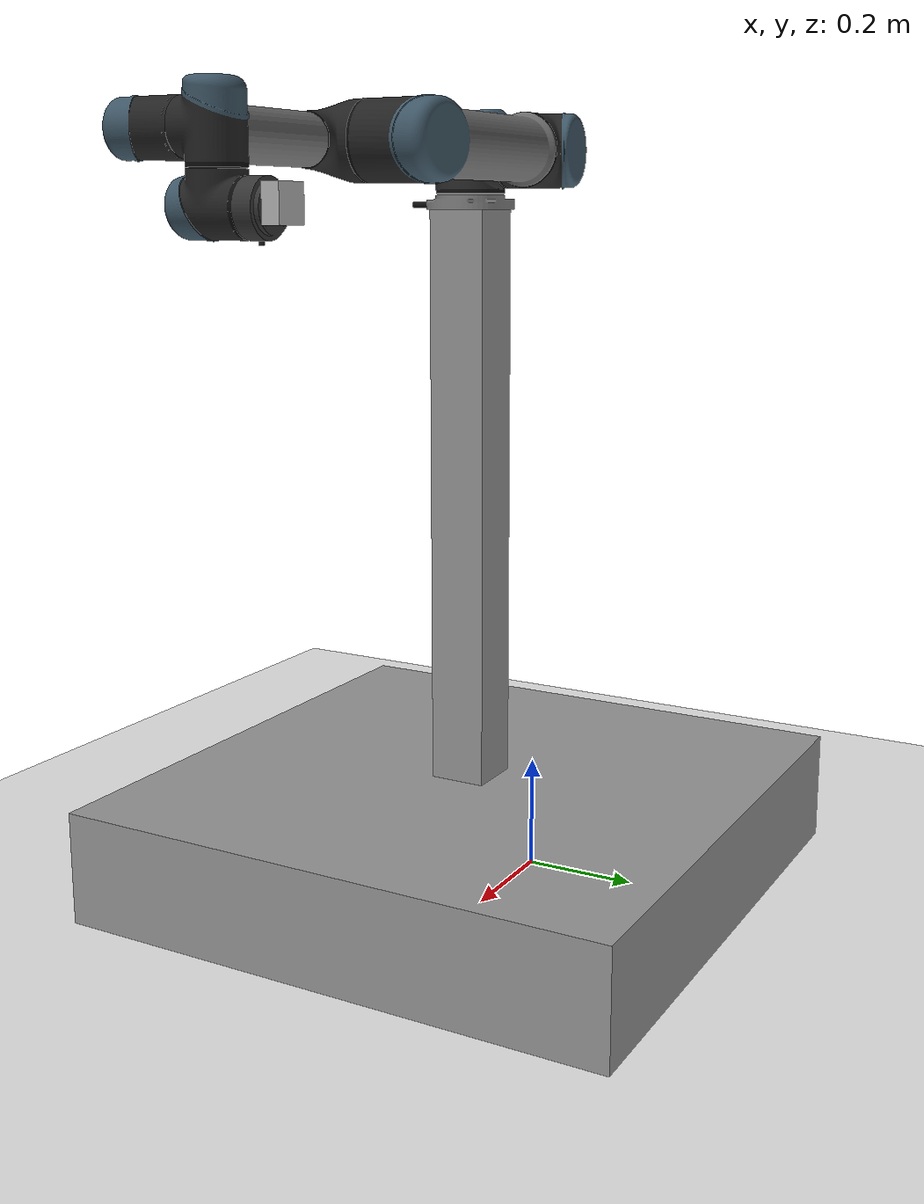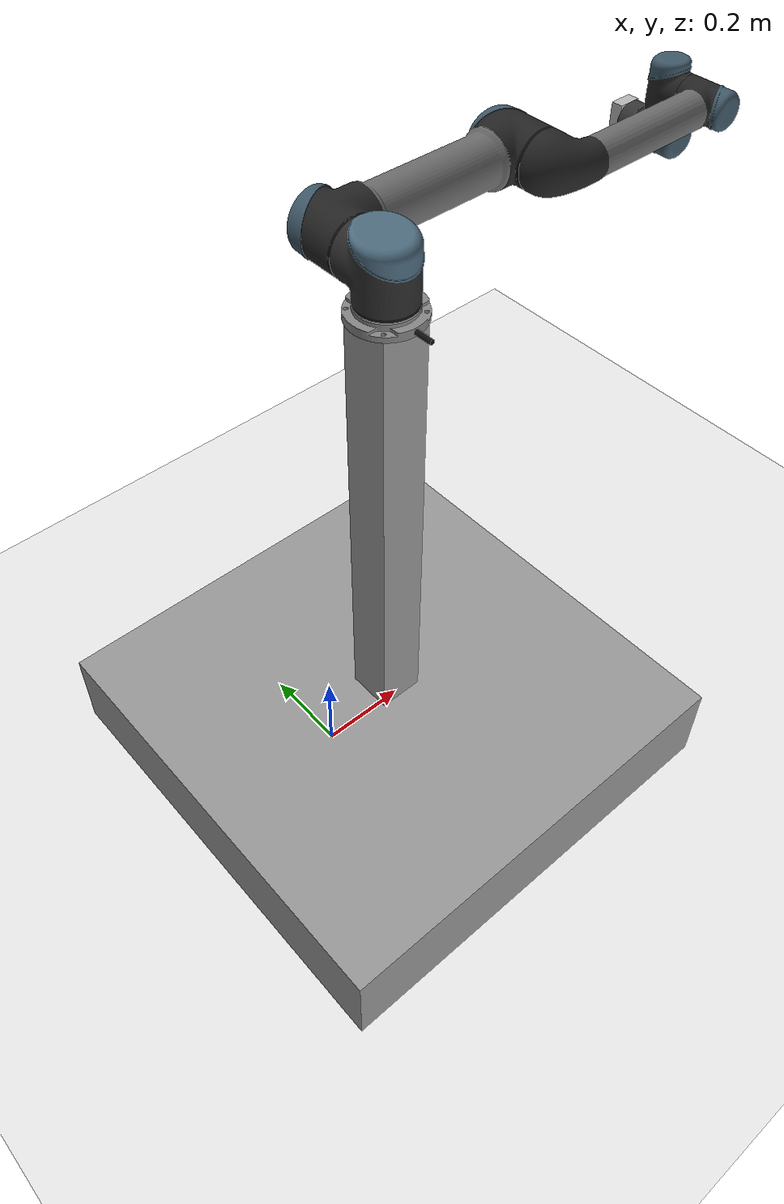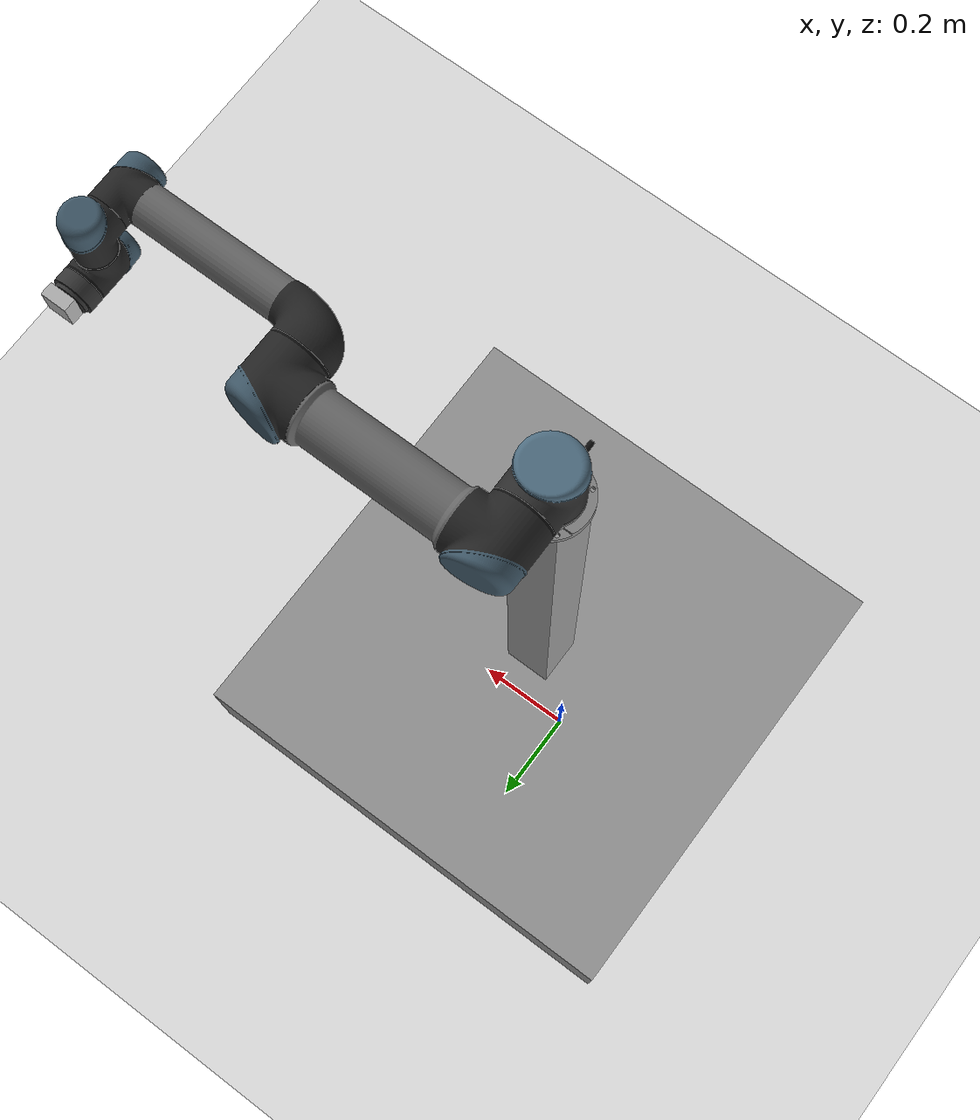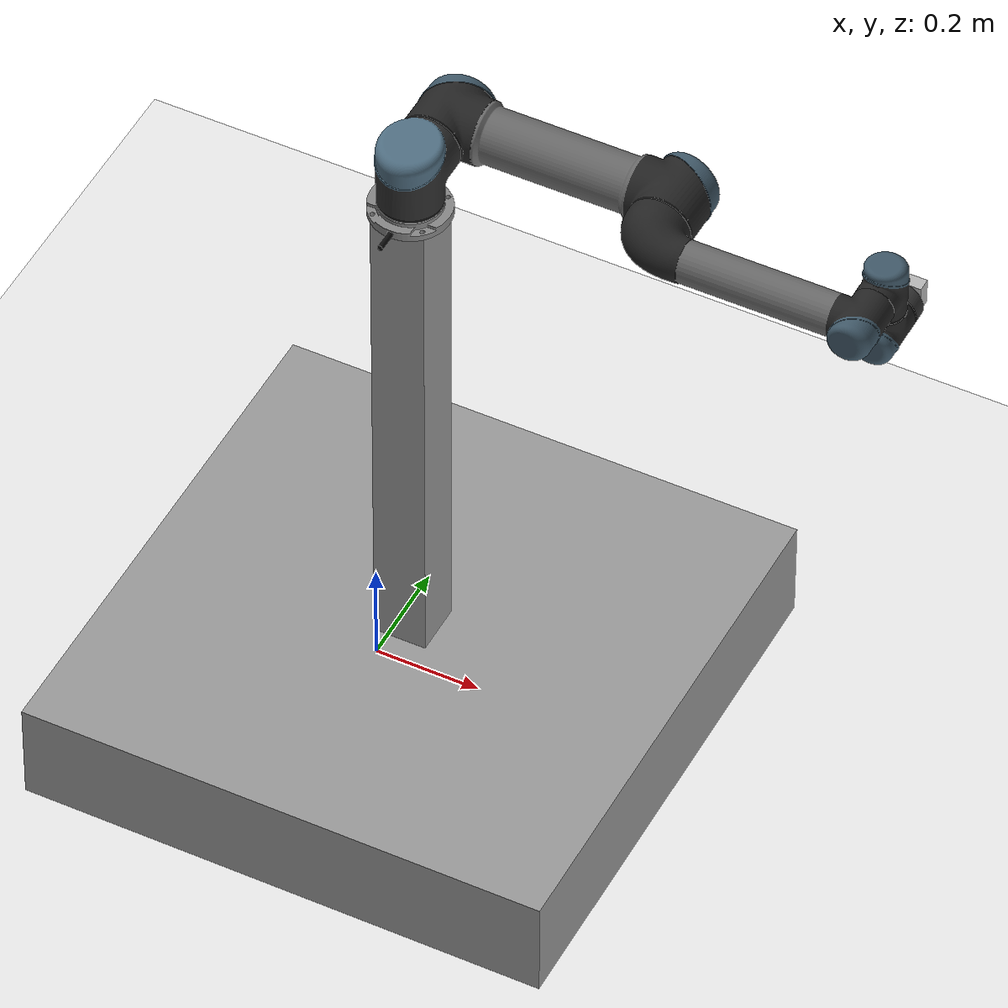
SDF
<sdf version="1.6">
 <world name="default">
  <scene><shadows>0</shadows><background>1.0 1.0 1.0 1.0</background></scene>
  <light name="sun" type="directional">
   <pose>0 0 10 0 -0 0</pose>
   <diffuse>0.8 0.8 0.8 1</diffuse>
   <specular>0.1 0.1 0.1 1</specular>
   <attenuation>
    <range>1000</range>
    <constant>0.9</constant>
    <linear>0.01</linear>
    <quadratic>0.001</quadratic>
   </attenuation>
   <direction>-0.5 0.5 -1</direction>
  </light>
  <model name="ground_plane">
   <static>1</static>
   <link name="link">
    <collision name="collision">
     <geometry><plane><normal>0 0 1</normal><size>100 100</size></plane></geometry>
     <surface><friction><ode><mu>100</mu><mu2>50</mu2></ode></friction></surface>
    </collision>
    <visual name="visual">
     <cast_shadows>0</cast_shadows>
     <geometry><plane><normal>0 0 1</normal><size>100 100</size></plane></geometry>
     <material>
      <script><uri>file://media/materials/scripts/gazebo.material</uri><name>Gazebo/White</name></script>
     </material>
    </visual>
   </link>
   <link name="object_box_link">
    <pose>0.35 0.7 1.35 0 -0 0</pose>
    <inertial>
     <mass>1</mass>
     <inertia>
      <ixx>0.166667</ixx>
      <ixy>0</ixy>
      <ixz>0</ixz>
      <iyy>0.166667</iyy>
      <iyz>0</iyz>
      <izz>0.166667</izz>
     </inertia>
    </inertial>
    <visual name="visual">
     <geometry><sphere><radius>0.05</radius></sphere></geometry>
     <material>
      <script><name>Gazebo/Blue</name><uri>file://media/materials/scripts/gazebo.material</uri></script>
     </material>
    </visual>
   </link>
  </model>
  <gravity>0 0 -9.8</gravity>
  <magnetic_field>6e-06 2.3e-05 -4.2e-05</magnetic_field>
  <atmosphere type="adiabatic"/>
  <physics name="default_physics" default="0" type="ode">
   <max_step_size>0.001</max_step_size>
   <real_time_factor>1</real_time_factor>
   <real_time_update_rate>1000</real_time_update_rate>
  </physics>
  <scene><ambient>0.4 0.4 0.4 1</ambient><background>0.7 0.7 0.7 1</background><shadows>1</shadows></scene>
  <spherical_coordinates>
   <surface_model>EARTH_WGS84</surface_model>
   <latitude_deg>0</latitude_deg>
   <longitude_deg>0</longitude_deg>
   <elevation>0</elevation>
   <heading_deg>0</heading_deg>
  </spherical_coordinates>
  <model name="robot_model">
   <plugin name="velocity_controller_ros" filename="libvelocity_controller_ros.so"/>
   <link name="base_stand::ground_base_link">
    <pose>0 0 0.1 0 -0 0</pose>
    <inertial>
     <mass>1000</mass>
     <inertia>
      <ixx>0.166667</ixx>
      <ixy>0</ixy>
      <ixz>0</ixz>
      <iyy>0.166667</iyy>
      <iyz>0</iyz>
      <izz>0.166667</izz>
     </inertia>
    </inertial>
    <visual name="ground_base_visual">
     <geometry><box><size>1 1 0.2</size></box></geometry>
     <material>
      <script><name>Gazebo/Grey</name><uri>file://media/materials/scripts/gazebo.material</uri></script>
      <ambient>0.3 0.3 0.3 1</ambient>
      <diffuse>0.7 0.7 0.7 1</diffuse>
      <specular>0.01 0.01 0.01 1</specular>
      <emissive>0 0 0 1</emissive>
     </material>
    </visual>
    <collision name="ground_base_collision">
     <geometry><box><size>1 1 0.2</size></box></geometry>
     <surface>
      <friction>
       <ode><mu>1</mu><mu2>1</mu2><fdir1>0 0 0</fdir1><slip1>0</slip1><slip2>0</slip2></ode>
       <torsional>
        <coefficient>1</coefficient>
        <patch_radius>0</patch_radius>
        <surface_radius>0</surface_radius>
        <use_patch_radius>1</use_patch_radius>
        <ode><slip>0</slip></ode>
       </torsional>
      </friction>
      <bounce><restitution_coefficient>0</restitution_coefficient><threshold>1e+06</threshold></bounce>
      <contact>
       <collide_without_contact>0</collide_without_contact>
       <collide_without_contact_bitmask>1</collide_without_contact_bitmask>
       <collide_bitmask>1</collide_bitmask>
       <ode>
        <soft_cfm>0</soft_cfm>
        <soft_erp>0.2</soft_erp>
        <kp>1e+13</kp>
        <kd>1</kd>
        <max_vel>0.01</max_vel>
        <min_depth>0</min_depth>
       </ode>
       <bullet>
        <split_impulse>1</split_impulse>
        <split_impulse_penetration_threshold>-0.01</split_impulse_penetration_threshold>
        <soft_cfm>0</soft_cfm>
        <soft_erp>0.2</soft_erp>
        <kp>1e+13</kp>
        <kd>1</kd>
       </bullet>
      </contact>
     </surface>
    </collision>
   </link>
   <link name="base_stand::upper_base_link">
    <pose>0 0 0.7 0 -0 0</pose>
    <inertial>
     <mass>100</mass>
     <inertia>
      <ixx>0.166667</ixx>
      <ixy>0</ixy>
      <ixz>0</ixz>
      <iyy>0.166667</iyy>
      <iyz>0</iyz>
      <izz>0.166667</izz>
     </inertia>
    </inertial>
    <visual name="upper_base_visual">
     <geometry><box><size>0.1 0.1 1</size></box></geometry>
     <material>
      <script><name>Gazebo/Grey</name><uri>file://media/materials/scripts/gazebo.material</uri></script>
      <ambient>0.3 0.3 0.3 1</ambient>
      <diffuse>0.7 0.7 0.7 1</diffuse>
      <specular>0.01 0.01 0.01 1</specular>
      <emissive>0 0 0 1</emissive>
     </material>
    </visual>
    <collision name="upper_base_collision">
     <geometry><box><size>0.1 0.1 1</size></box></geometry>
     <surface>
      <friction>
       <ode><mu>1</mu><mu2>1</mu2><fdir1>0 0 0</fdir1><slip1>0</slip1><slip2>0</slip2></ode>
       <torsional>
        <coefficient>1</coefficient>
        <patch_radius>0</patch_radius>
        <surface_radius>0</surface_radius>
        <use_patch_radius>1</use_patch_radius>
        <ode><slip>0</slip></ode>
       </torsional>
      </friction>
      <bounce><restitution_coefficient>0</restitution_coefficient><threshold>1e+06</threshold></bounce>
      <contact>
       <collide_without_contact>0</collide_without_contact>
       <collide_without_contact_bitmask>1</collide_without_contact_bitmask>
       <collide_bitmask>1</collide_bitmask>
       <ode>
        <soft_cfm>0</soft_cfm>
        <soft_erp>0.2</soft_erp>
        <kp>1e+13</kp>
        <kd>1</kd>
        <max_vel>0.01</max_vel>
        <min_depth>0</min_depth>
       </ode>
       <bullet>
        <split_impulse>1</split_impulse>
        <split_impulse_penetration_threshold>-0.01</split_impulse_penetration_threshold>
        <soft_cfm>0</soft_cfm>
        <soft_erp>0.2</soft_erp>
        <kp>1e+13</kp>
        <kd>1</kd>
       </bullet>
      </contact>
     </surface>
    </collision>
   </link>
   <joint name="base_stand::base_joint" type="fixed">
    <child>base_stand::upper_base_link</child>
    <parent>base_stand::ground_base_link</parent>
   </joint>
   <static>0</static>
   <link name="ur5::base_link">
    <pose>0 0 1.2 0 -0 0</pose>
    <inertial>
     <mass>4</mass>
     <inertia>
      <ixx>0.00443333</ixx>
      <ixy>0</ixy>
      <ixz>0</ixz>
      <iyy>0.00443333</iyy>
      <iyz>0</iyz>
      <izz>0.0072</izz>
     </inertia>
    </inertial>
    <visual name="base_link_visual">
     <geometry>
      <mesh>
       <scale>1 1 1</scale>
       <uri>/home/mithun/ur_vs_gazebo/src/universal_robot/ur_description/meshes/ur5/visual/base.dae</uri>
      </mesh>
     </geometry>
    </visual>
    <collision name="base_link_collision">
     <geometry>
      <mesh>
       <uri>/home/mithun/ur_vs_gazebo/src/universal_robot/ur_description/meshes/ur5/collision/base.stl</uri>
       <scale>1 1 1</scale>
      </mesh>
     </geometry>
     <surface>
      <friction>
       <ode><mu>1</mu><mu2>1</mu2><fdir1>0 0 0</fdir1><slip1>0</slip1><slip2>0</slip2></ode>
       <torsional>
        <coefficient>1</coefficient>
        <patch_radius>0</patch_radius>
        <surface_radius>0</surface_radius>
        <use_patch_radius>1</use_patch_radius>
        <ode><slip>0</slip></ode>
       </torsional>
      </friction>
      <bounce><restitution_coefficient>0</restitution_coefficient><threshold>1e+06</threshold></bounce>
      <contact>
       <collide_without_contact>0</collide_without_contact>
       <collide_without_contact_bitmask>1</collide_without_contact_bitmask>
       <collide_bitmask>1</collide_bitmask>
       <ode>
        <soft_cfm>0</soft_cfm>
        <soft_erp>0.2</soft_erp>
        <kp>1e+13</kp>
        <kd>1</kd>
        <max_vel>0.01</max_vel>
        <min_depth>0</min_depth>
       </ode>
       <bullet>
        <split_impulse>1</split_impulse>
        <split_impulse_penetration_threshold>-0.01</split_impulse_penetration_threshold>
        <soft_cfm>0</soft_cfm>
        <soft_erp>0.2</soft_erp>
        <kp>1e+13</kp>
        <kd>1</kd>
       </bullet>
      </contact>
     </surface>
    </collision>
   </link>
   <link name="ur5::forearm_link">
    <pose>0.425 0.01615 1.28916 3.14159 1.57079 3.14159</pose>
    <inertial>
     <pose>0 0 0.25 0 -0 0</pose>
     <mass>2.275</mass>
     <inertia>
      <ixx>0.0494433</ixx>
      <ixy>0</ixy>
      <ixz>0</ixz>
      <iyy>0.0494433</iyy>
      <iyz>0</iyz>
      <izz>0.004095</izz>
     </inertia>
    </inertial>
    <visual name="forearm_link_visual">
     <geometry>
      <mesh>
       <scale>1 1 1</scale>
       <uri>/home/mithun/ur_vs_gazebo/src/universal_robot/ur_description/meshes/ur5/visual/forearm.dae</uri>
      </mesh>
     </geometry>
    </visual>
    <collision name="forearm_link_collision">
     <geometry>
      <mesh>
       <uri>/home/mithun/ur_vs_gazebo/src/universal_robot/ur_description/meshes/ur5/collision/forearm.stl</uri>
       <scale>1 1 1</scale>
      </mesh>
     </geometry>
     <surface>
      <friction>
       <ode><mu>1</mu><mu2>1</mu2><fdir1>0 0 0</fdir1><slip1>0</slip1><slip2>0</slip2></ode>
       <torsional>
        <coefficient>1</coefficient>
        <patch_radius>0</patch_radius>
        <surface_radius>0</surface_radius>
        <use_patch_radius>1</use_patch_radius>
        <ode><slip>0</slip></ode>
       </torsional>
      </friction>
      <bounce><restitution_coefficient>0</restitution_coefficient><threshold>1e+06</threshold></bounce>
      <contact>
       <collide_without_contact>0</collide_without_contact>
       <collide_without_contact_bitmask>1</collide_without_contact_bitmask>
       <collide_bitmask>1</collide_bitmask>
       <ode>
        <soft_cfm>0</soft_cfm>
        <soft_erp>0.2</soft_erp>
        <kp>1e+13</kp>
        <kd>1</kd>
        <max_vel>0.01</max_vel>
        <min_depth>0</min_depth>
       </ode>
       <bullet>
        <split_impulse>1</split_impulse>
        <split_impulse_penetration_threshold>-0.01</split_impulse_penetration_threshold>
        <soft_cfm>0</soft_cfm>
        <soft_erp>0.2</soft_erp>
        <kp>1e+13</kp>
        <kd>1</kd>
       </bullet>
      </contact>
     </surface>
    </collision>
   </link>
   <link name="ur5::shoulder_link">
    <pose>0 0 1.28916 0 -0 0</pose>
    <inertial>
     <mass>3.7</mass>
     <inertia>
      <ixx>0.0102675</ixx>
      <ixy>0</ixy>
      <ixz>0</ixz>
      <iyy>0.0102675</iyy>
      <iyz>0</iyz>
      <izz>0.00666</izz>
     </inertia>
    </inertial>
    <visual name="shoulder_link_visual">
     <geometry>
      <mesh>
       <scale>1 1 1</scale>
       <uri>/home/mithun/ur_vs_gazebo/src/universal_robot/ur_description/meshes/ur5/visual/shoulder.dae</uri>
      </mesh>
     </geometry>
    </visual>
    <collision name="shoulder_link_collision">
     <geometry>
      <mesh>
       <uri>/home/mithun/ur_vs_gazebo/src/universal_robot/ur_description/meshes/ur5/collision/shoulder.stl</uri>
       <scale>1 1 1</scale>
      </mesh>
     </geometry>
     <surface>
      <friction>
       <ode><mu>1</mu><mu2>1</mu2><fdir1>0 0 0</fdir1><slip1>0</slip1><slip2>0</slip2></ode>
       <torsional>
        <coefficient>1</coefficient>
        <patch_radius>0</patch_radius>
        <surface_radius>0</surface_radius>
        <use_patch_radius>1</use_patch_radius>
        <ode><slip>0</slip></ode>
       </torsional>
      </friction>
      <bounce><restitution_coefficient>0</restitution_coefficient><threshold>1e+06</threshold></bounce>
      <contact>
       <collide_without_contact>0</collide_without_contact>
       <collide_without_contact_bitmask>1</collide_without_contact_bitmask>
       <collide_bitmask>1</collide_bitmask>
       <ode>
        <soft_cfm>0</soft_cfm>
        <soft_erp>0.2</soft_erp>
        <kp>1e+13</kp>
        <kd>1</kd>
        <max_vel>0.01</max_vel>
        <min_depth>0</min_depth>
       </ode>
       <bullet>
        <split_impulse>1</split_impulse>
        <split_impulse_penetration_threshold>-0.01</split_impulse_penetration_threshold>
        <soft_cfm>0</soft_cfm>
        <soft_erp>0.2</soft_erp>
        <kp>1e+13</kp>
        <kd>1</kd>
       </bullet>
      </contact>
     </surface>
    </collision>
   </link>
   <link name="ur5::upper_arm_link">
    <pose>0 0.13585 1.28916 3.14159 1.57079 3.14159</pose>
    <inertial>
     <pose>0 0 0.28 0 -0 0</pose>
     <mass>8.393</mass>
     <inertia>
      <ixx>0.226891</ixx>
      <ixy>0</ixy>
      <ixz>0</ixz>
      <iyy>0.226891</iyy>
      <iyz>0</iyz>
      <izz>0.0151074</izz>
     </inertia>
    </inertial>
    <visual name="upper_arm_link_visual">
     <geometry>
      <mesh>
       <scale>1 1 1</scale>
       <uri>/home/mithun/ur_vs_gazebo/src/universal_robot/ur_description/meshes/ur5/visual/upperarm.dae</uri>
      </mesh>
     </geometry>
    </visual>
    <collision name="upper_arm_link_collision">
     <geometry>
      <mesh>
       <uri>/home/mithun/ur_vs_gazebo/src/universal_robot/ur_description/meshes/ur5/collision/upperarm.stl</uri>
       <scale>1 1 1</scale>
      </mesh>
     </geometry>
     <surface>
      <friction>
       <ode><mu>1</mu><mu2>1</mu2><fdir1>0 0 0</fdir1><slip1>0</slip1><slip2>0</slip2></ode>
       <torsional>
        <coefficient>1</coefficient>
        <patch_radius>0</patch_radius>
        <surface_radius>0</surface_radius>
        <use_patch_radius>1</use_patch_radius>
        <ode><slip>0</slip></ode>
       </torsional>
      </friction>
      <bounce><restitution_coefficient>0</restitution_coefficient><threshold>1e+06</threshold></bounce>
      <contact>
       <collide_without_contact>0</collide_without_contact>
       <collide_without_contact_bitmask>1</collide_without_contact_bitmask>
       <collide_bitmask>1</collide_bitmask>
       <ode>
        <soft_cfm>0</soft_cfm>
        <soft_erp>0.2</soft_erp>
        <kp>1e+13</kp>
        <kd>1</kd>
        <max_vel>0.01</max_vel>
        <min_depth>0</min_depth>
       </ode>
       <bullet>
        <split_impulse>1</split_impulse>
        <split_impulse_penetration_threshold>-0.01</split_impulse_penetration_threshold>
        <soft_cfm>0</soft_cfm>
        <soft_erp>0.2</soft_erp>
        <kp>1e+13</kp>
        <kd>1</kd>
       </bullet>
      </contact>
     </surface>
    </collision>
   </link>
   <link name="ur5::wrist_1_link">
    <pose>0.81725 0.01615 1.28916 3.14159 -0 3.14159</pose>
    <inertial>
     <mass>1.219</mass>
     <inertia>
      <ixx>0.111173</ixx>
      <ixy>0</ixy>
      <ixz>0</ixz>
      <iyy>0.111173</iyy>
      <iyz>0</iyz>
      <izz>0.21942</izz>
     </inertia>
    </inertial>
    <visual name="wrist_1_link_visual">
     <geometry>
      <mesh>
       <scale>1 1 1</scale>
       <uri>/home/mithun/ur_vs_gazebo/src/universal_robot/ur_description/meshes/ur5/visual/wrist1.dae</uri>
      </mesh>
     </geometry>
    </visual>
    <collision name="wrist_1_link_collision">
     <geometry>
      <mesh>
       <uri>/home/mithun/ur_vs_gazebo/src/universal_robot/ur_description/meshes/ur5/collision/wrist1.stl</uri>
       <scale>1 1 1</scale>
      </mesh>
     </geometry>
     <surface>
      <friction>
       <ode><mu>1</mu><mu2>1</mu2><fdir1>0 0 0</fdir1><slip1>0</slip1><slip2>0</slip2></ode>
       <torsional>
        <coefficient>1</coefficient>
        <patch_radius>0</patch_radius>
        <surface_radius>0</surface_radius>
        <use_patch_radius>1</use_patch_radius>
        <ode><slip>0</slip></ode>
       </torsional>
      </friction>
      <bounce><restitution_coefficient>0</restitution_coefficient><threshold>1e+06</threshold></bounce>
      <contact>
       <collide_without_contact>0</collide_without_contact>
       <collide_without_contact_bitmask>1</collide_without_contact_bitmask>
       <collide_bitmask>1</collide_bitmask>
       <ode>
        <soft_cfm>0</soft_cfm>
        <soft_erp>0.2</soft_erp>
        <kp>1e+13</kp>
        <kd>1</kd>
        <max_vel>0.01</max_vel>
        <min_depth>0</min_depth>
       </ode>
       <bullet>
        <split_impulse>1</split_impulse>
        <split_impulse_penetration_threshold>-0.01</split_impulse_penetration_threshold>
        <soft_cfm>0</soft_cfm>
        <soft_erp>0.2</soft_erp>
        <kp>1e+13</kp>
        <kd>1</kd>
       </bullet>
      </contact>
     </surface>
    </collision>
   </link>
   <link name="ur5::wrist_2_link">
    <pose>0.81725 0.10915 1.28916 3.14159 -0 3.14159</pose>
    <inertial>
     <mass>1.219</mass>
     <inertia>
      <ixx>0.111173</ixx>
      <ixy>0</ixy>
      <ixz>0</ixz>
      <iyy>0.111173</iyy>
      <iyz>0</iyz>
      <izz>0.21942</izz>
     </inertia>
    </inertial>
    <visual name="wrist_2_link_visual">
     <geometry>
      <mesh>
       <scale>1 1 1</scale>
       <uri>/home/mithun/ur_vs_gazebo/src/universal_robot/ur_description/meshes/ur5/visual/wrist2.dae</uri>
      </mesh>
     </geometry>
    </visual>
    <collision name="wrist_2_link_collision">
     <geometry>
      <mesh>
       <uri>/home/mithun/ur_vs_gazebo/src/universal_robot/ur_description/meshes/ur5/collision/wrist2.stl</uri>
       <scale>1 1 1</scale>
      </mesh>
     </geometry>
     <surface>
      <friction>
       <ode><mu>1</mu><mu2>1</mu2><fdir1>0 0 0</fdir1><slip1>0</slip1><slip2>0</slip2></ode>
       <torsional>
        <coefficient>1</coefficient>
        <patch_radius>0</patch_radius>
        <surface_radius>0</surface_radius>
        <use_patch_radius>1</use_patch_radius>
        <ode><slip>0</slip></ode>
       </torsional>
      </friction>
      <bounce><restitution_coefficient>0</restitution_coefficient><threshold>1e+06</threshold></bounce>
      <contact>
       <collide_without_contact>0</collide_without_contact>
       <collide_without_contact_bitmask>1</collide_without_contact_bitmask>
       <collide_bitmask>1</collide_bitmask>
       <ode>
        <soft_cfm>0</soft_cfm>
        <soft_erp>0.2</soft_erp>
        <kp>1e+13</kp>
        <kd>1</kd>
        <max_vel>0.01</max_vel>
        <min_depth>0</min_depth>
       </ode>
       <bullet>
        <split_impulse>1</split_impulse>
        <split_impulse_penetration_threshold>-0.01</split_impulse_penetration_threshold>
        <soft_cfm>0</soft_cfm>
        <soft_erp>0.2</soft_erp>
        <kp>1e+13</kp>
        <kd>1</kd>
       </bullet>
      </contact>
     </surface>
    </collision>
   </link>
   <link name="ur5::wrist_3_link">
    <pose>0.81725 0.10915 1.19451 3.14159 -0 3.14159</pose>
    <inertial>
     <mass>0.1879</mass>
     <inertia>
      <ixx>0.0171365</ixx>
      <ixy>0</ixy>
      <ixz>0</ixz>
      <iyy>0.0171365</iyy>
      <iyz>0</iyz>
      <izz>0.033822</izz>
     </inertia>
    </inertial>
    <visual name="wrist_3_link_visual">
     <geometry>
      <mesh>
       <scale>1 1 1</scale>
       <uri>/home/mithun/ur_vs_gazebo/src/universal_robot/ur_description/meshes/ur5/visual/wrist3.dae</uri>
      </mesh>
     </geometry>
    </visual>
    <collision name="wrist_3_link_collision">
     <geometry>
      <mesh>
       <uri>/home/mithun/ur_vs_gazebo/src/universal_robot/ur_description/meshes/ur5/collision/wrist3.stl</uri>
       <scale>1 1 1</scale>
      </mesh>
     </geometry>
     <surface>
      <friction>
       <ode><mu>1</mu><mu2>1</mu2><fdir1>0 0 0</fdir1><slip1>0</slip1><slip2>0</slip2></ode>
       <torsional>
        <coefficient>1</coefficient>
        <patch_radius>0</patch_radius>
        <surface_radius>0</surface_radius>
        <use_patch_radius>1</use_patch_radius>
        <ode><slip>0</slip></ode>
       </torsional>
      </friction>
      <bounce><restitution_coefficient>0</restitution_coefficient><threshold>1e+06</threshold></bounce>
      <contact>
       <collide_without_contact>0</collide_without_contact>
       <collide_without_contact_bitmask>1</collide_without_contact_bitmask>
       <collide_bitmask>1</collide_bitmask>
       <ode>
        <soft_cfm>0</soft_cfm>
        <soft_erp>0.2</soft_erp>
        <kp>1e+13</kp>
        <kd>1</kd>
        <max_vel>0.01</max_vel>
        <min_depth>0</min_depth>
       </ode>
       <bullet>
        <split_impulse>1</split_impulse>
        <split_impulse_penetration_threshold>-0.01</split_impulse_penetration_threshold>
        <soft_cfm>0</soft_cfm>
        <soft_erp>0.2</soft_erp>
        <kp>1e+13</kp>
        <kd>1</kd>
       </bullet>
      </contact>
     </surface>
    </collision>
    <collision name="wrist_3_link_fixed_joint_lump__ee_link_collision_1">
     <pose>0 0.0723 0 0 -0 1.5708</pose>
     <geometry><box><size>0.01 0.01 0.01</size></box></geometry>
     <surface>
      <friction>
       <ode><mu>1</mu><mu2>1</mu2><fdir1>0 0 0</fdir1><slip1>0</slip1><slip2>0</slip2></ode>
       <torsional>
        <coefficient>1</coefficient>
        <patch_radius>0</patch_radius>
        <surface_radius>0</surface_radius>
        <use_patch_radius>1</use_patch_radius>
        <ode><slip>0</slip></ode>
       </torsional>
      </friction>
      <bounce><restitution_coefficient>0</restitution_coefficient><threshold>1e+06</threshold></bounce>
      <contact>
       <collide_without_contact>0</collide_without_contact>
       <collide_without_contact_bitmask>1</collide_without_contact_bitmask>
       <collide_bitmask>1</collide_bitmask>
       <ode>
        <soft_cfm>0</soft_cfm>
        <soft_erp>0.2</soft_erp>
        <kp>1e+13</kp>
        <kd>1</kd>
        <max_vel>0.01</max_vel>
        <min_depth>0</min_depth>
       </ode>
       <bullet>
        <split_impulse>1</split_impulse>
        <split_impulse_penetration_threshold>-0.01</split_impulse_penetration_threshold>
        <soft_cfm>0</soft_cfm>
        <soft_erp>0.2</soft_erp>
        <kp>1e+13</kp>
        <kd>1</kd>
       </bullet>
      </contact>
     </surface>
    </collision>
   </link>
   <joint name="ur5::elbow_joint" type="revolute">
    <parent>ur5::upper_arm_link</parent>
    <child>ur5::forearm_link</child>
    <axis>
     <xyz>0 1 0</xyz>
     <use_parent_model_frame>1</use_parent_model_frame>
     <limit><lower>-6.28319</lower><upper>6.28319</upper><effort>150</effort><velocity>3.15</velocity></limit>
     <dynamics>
      <spring_reference>0</spring_reference>
      <spring_stiffness>0</spring_stiffness>
      <damping>0</damping>
      <friction>0</friction>
     </dynamics>
    </axis>
    <physics>
     <ode><limit><cfm>0</cfm><erp>0.2</erp></limit><suspension><cfm>0</cfm><erp>0.2</erp></suspension></ode>
    </physics>
   </joint>
   <joint name="ur5::shoulder_lift_joint" type="revolute">
    <parent>ur5::shoulder_link</parent>
    <child>ur5::upper_arm_link</child>
    <axis>
     <xyz>0 1 0</xyz>
     <use_parent_model_frame>1</use_parent_model_frame>
     <limit><lower>-6.28319</lower><upper>6.28319</upper><effort>150</effort><velocity>3.15</velocity></limit>
     <dynamics>
      <spring_reference>0</spring_reference>
      <spring_stiffness>0</spring_stiffness>
      <damping>0</damping>
      <friction>0</friction>
     </dynamics>
    </axis>
    <physics>
     <ode><limit><cfm>0</cfm><erp>0.2</erp></limit><suspension><cfm>0</cfm><erp>0.2</erp></suspension></ode>
    </physics>
   </joint>
   <joint name="ur5::shoulder_pan_joint" type="revolute">
    <parent>ur5::base_link</parent>
    <child>ur5::shoulder_link</child>
    <axis>
     <xyz>0 0 1</xyz>
     <use_parent_model_frame>1</use_parent_model_frame>
     <limit><lower>-6.28319</lower><upper>6.28319</upper><effort>150</effort><velocity>3.15</velocity></limit>
     <dynamics>
      <spring_reference>0</spring_reference>
      <spring_stiffness>0</spring_stiffness>
      <damping>0</damping>
      <friction>0</friction>
     </dynamics>
    </axis>
    <physics>
     <ode><limit><cfm>0</cfm><erp>0.2</erp></limit><suspension><cfm>0</cfm><erp>0.2</erp></suspension></ode>
    </physics>
   </joint>
   <joint name="ur5::wrist_1_joint" type="revolute">
    <parent>ur5::forearm_link</parent>
    <child>ur5::wrist_1_link</child>
    <axis>
     <xyz>0 1 0</xyz>
     <use_parent_model_frame>1</use_parent_model_frame>
     <limit><lower>-6.28319</lower><upper>6.28319</upper><effort>28</effort><velocity>3.2</velocity></limit>
     <dynamics>
      <spring_reference>0</spring_reference>
      <spring_stiffness>0</spring_stiffness>
      <damping>0</damping>
      <friction>0</friction>
     </dynamics>
    </axis>
    <physics>
     <ode><limit><cfm>0</cfm><erp>0.2</erp></limit><suspension><cfm>0</cfm><erp>0.2</erp></suspension></ode>
    </physics>
   </joint>
   <joint name="ur5::wrist_2_joint" type="revolute">
    <parent>ur5::wrist_1_link</parent>
    <child>ur5::wrist_2_link</child>
    <axis>
     <xyz>0 0 -1</xyz>
     <use_parent_model_frame>1</use_parent_model_frame>
     <limit><lower>-6.28319</lower><upper>6.28319</upper><effort>28</effort><velocity>3.2</velocity></limit>
     <dynamics>
      <spring_reference>0</spring_reference>
      <spring_stiffness>0</spring_stiffness>
      <damping>0</damping>
      <friction>0</friction>
     </dynamics>
    </axis>
    <physics>
     <ode><limit><cfm>0</cfm><erp>0.2</erp></limit><suspension><cfm>0</cfm><erp>0.2</erp></suspension></ode>
    </physics>
   </joint>
   <joint name="ur5::wrist_3_joint" type="revolute">
    <parent>ur5::wrist_2_link</parent>
    <child>ur5::wrist_3_link</child>
    <axis>
     <xyz>0 1 0</xyz>
     <use_parent_model_frame>1</use_parent_model_frame>
     <limit><lower>-6.28319</lower><upper>6.28319</upper><effort>28</effort><velocity>3.2</velocity></limit>
     <dynamics>
      <spring_reference>0</spring_reference>
      <spring_stiffness>0</spring_stiffness>
      <damping>0</damping>
      <friction>0</friction>
     </dynamics>
    </axis>
    <physics>
     <ode><limit><cfm>0</cfm><erp>0.2</erp></limit><suspension><cfm>0</cfm><erp>0.2</erp></suspension></ode>
    </physics>
   </joint>
   <link name="ur5::camera_link">
    <pose>0.82 0.205 1.2 0 -0 1.57</pose>
    <inertial>
     <mass>0.1</mass>
     <inertia><ixx>1</ixx><ixy>0</ixy><ixz>0</ixz><iyy>1</iyy><iyz>0</iyz><izz>1</izz></inertia>
    </inertial>
    <sensor name="camera" type="depth">
     <always_on>1</always_on>
     <update_rate>10</update_rate>
     <camera name="__default__">
      <horizontal_fov>1.0472</horizontal_fov>
      <image><width>640</width><height>480</height></image>
      <clip><near>0.1</near><far>100</far></clip>
     </camera>
     <plugin name="kinect_camera_controller" filename="libgazebo_ros_openni_kinect.so">
      <cameraName>camera</cameraName>
      <alwaysOn>true</alwaysOn>
      <updateRate>20</updateRate>
      <imageTopicName>rgb/image_raw</imageTopicName>
      <depthImageTopicName>depth/image_raw</depthImageTopicName>
      <pointCloudTopicName>depth/points</pointCloudTopicName>
      <cameraInfoTopicName>rgb/camera_info</cameraInfoTopicName>
      <depthImageCameraInfoTopicName>depth/camera_info</depthImageCameraInfoTopicName>
      <frameName>camera_depth_optical_frame</frameName>
      <baseline>0.1</baseline>
      <distortion_k1>0.0</distortion_k1>
      <distortion_k2>0.0</distortion_k2>
      <distortion_k3>0.0</distortion_k3>
      <distortion_t1>0.0</distortion_t1>
      <distortion_t2>0.0</distortion_t2>
      <pointCloudCutoff>0.1</pointCloudCutoff>
      <robotNamespace>/</robotNamespace>
     </plugin>
    </sensor>
    <visual name="camera_visual"><geometry><box><size>0.025 0.05 0.05</size></box></geometry></visual>
   </link>
   <joint name="ur5::camera_joint" type="fixed">
    <child>ur5::camera_link</child>
    <parent>ur5::wrist_3_link</parent>
   </joint>
   <static>0</static>
   <joint name="fixed_to_ground" type="fixed">
    <child>base_stand::ground_base_link</child>
    <parent>world</parent>
   </joint>
   <joint name="base_stand_joint" type="fixed">
    <child>ur5::base_link</child>
    <parent>base_stand::upper_base_link</parent>
   </joint>
   <static>0</static>
   <pose>0.109144 -0.070966 0 0 -0 0</pose>
  </model>
 </world>
</sdf>
